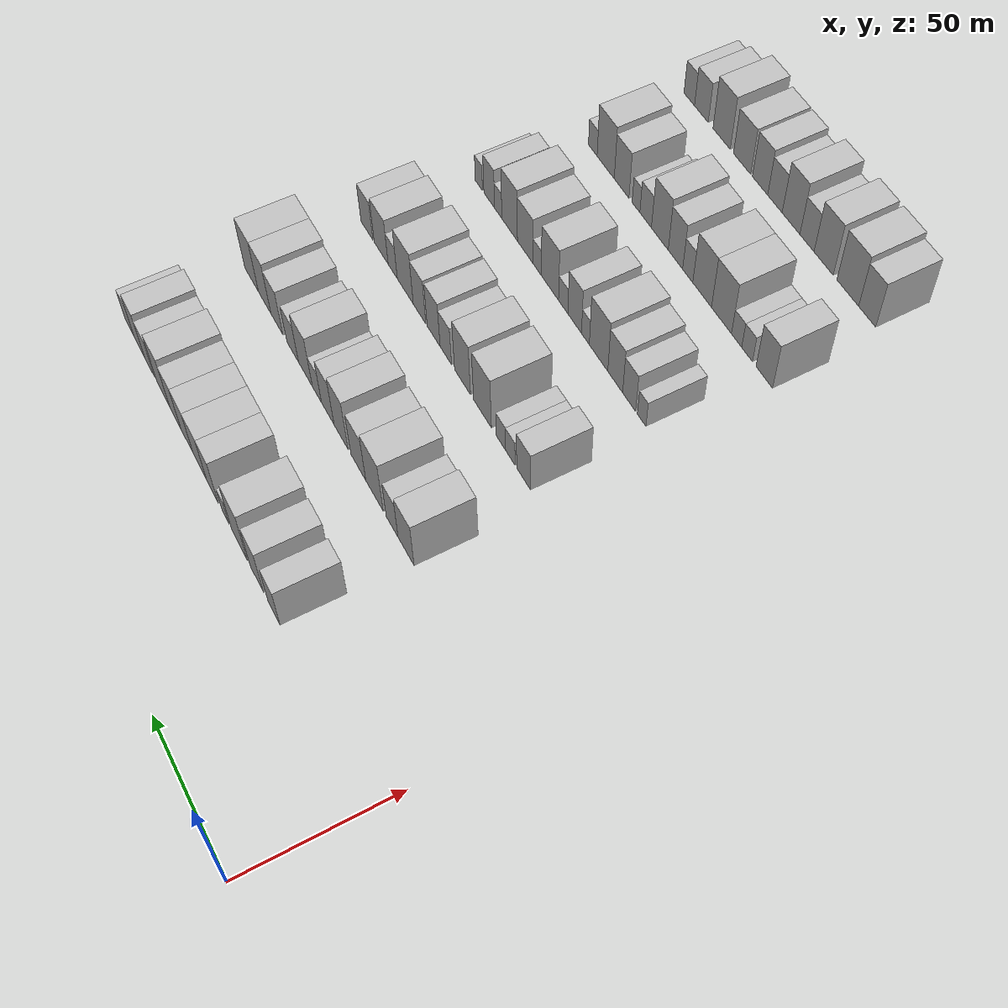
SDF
<sdf version="1.6">
 <world name="default">
  <model name="building_74">
   <static>1</static>
   <pose>50.0000 62.3128 0 0.000000 0.000000 0.000000</pose>
   <link name="link">
    <pose>0 0 9.00 0 0 0</pose>
    <collision name="collision"><geometry><box><size>20.0000 8.2062 18.0000</size></box></geometry></collision>
    <visual name="visual">
     <cast_shadows>0</cast_shadows>
     <geometry><box><size>20.0000 8.2062 18.0000</size></box></geometry>
     <material>
      <script>
       <uri>model://HANNAS_wall/materials/scripts</uri>
       <uri>model://HANNAS_wall/materials/textures</uri>
       <name>vrc/HANNAS_wall</name>
      </script>
     </material>
    </visual>
   </link>
  </model>
  <model name="building_75">
   <static>1</static>
   <pose>50.0000 74.0104 0 0.000000 0.000000 0.000000</pose>
   <link name="link">
    <pose>0 0 10.50 0 0 0</pose>
    <collision name="collision"><geometry><box><size>20.0000 9.1891 21.0000</size></box></geometry></collision>
    <visual name="visual">
     <cast_shadows>0</cast_shadows>
     <geometry><box><size>20.0000 9.1891 21.0000</size></box></geometry>
     <material>
      <script>
       <uri>model://HANNAS_wall/materials/scripts</uri>
       <uri>model://HANNAS_wall/materials/textures</uri>
       <name>vrc/HANNAS_wall</name>
      </script>
     </material>
    </visual>
   </link>
  </model>
  <model name="building_76">
   <static>1</static>
   <pose>50.0000 86.2270 0 0.000000 0.000000 0.000000</pose>
   <link name="link">
    <pose>0 0 12.00 0 0 0</pose>
    <collision name="collision"><geometry><box><size>20.0000 11.2441 24.0000</size></box></geometry></collision>
    <visual name="visual">
     <cast_shadows>0</cast_shadows>
     <geometry><box><size>20.0000 11.2441 24.0000</size></box></geometry>
     <material>
      <script>
       <uri>model://HANNAS_wall/materials/scripts</uri>
       <uri>model://HANNAS_wall/materials/textures</uri>
       <name>vrc/HANNAS_wall</name>
      </script>
     </material>
    </visual>
   </link>
  </model>
  <model name="building_77">
   <static>1</static>
   <pose>50.0000 96.2769 0 0.000000 0.000000 0.000000</pose>
   <link name="link">
    <pose>0 0 6.00 0 0 0</pose>
    <collision name="collision"><geometry><box><size>20.0000 4.8557 12.0000</size></box></geometry></collision>
    <visual name="visual">
     <cast_shadows>0</cast_shadows>
     <geometry><box><size>20.0000 4.8557 12.0000</size></box></geometry>
     <material>
      <script>
       <uri>model://HANNAS_wall/materials/scripts</uri>
       <uri>model://HANNAS_wall/materials/textures</uri>
       <name>vrc/HANNAS_wall</name>
      </script>
     </material>
    </visual>
   </link>
  </model>
  <model name="building_78">
   <static>1</static>
   <pose>50.0000 106.0245 0 0.000000 0.000000 0.000000</pose>
   <link name="link">
    <pose>0 0 10.50 0 0 0</pose>
    <collision name="collision"><geometry><box><size>20.0000 8.6394 21.0000</size></box></geometry></collision>
    <visual name="visual">
     <cast_shadows>0</cast_shadows>
     <geometry><box><size>20.0000 8.6394 21.0000</size></box></geometry>
     <material>
      <script>
       <uri>model://HANNAS_wall/materials/scripts</uri>
       <uri>model://HANNAS_wall/materials/textures</uri>
       <name>vrc/HANNAS_wall</name>
      </script>
     </material>
    </visual>
   </link>
  </model>
  <model name="building_79">
   <static>1</static>
   <pose>50.0000 115.4120 0 0.000000 0.000000 0.000000</pose>
   <link name="link">
    <pose>0 0 10.50 0 0 0</pose>
    <collision name="collision"><geometry><box><size>20.0000 10.1356 21.0000</size></box></geometry></collision>
    <visual name="visual">
     <cast_shadows>0</cast_shadows>
     <geometry><box><size>20.0000 10.1356 21.0000</size></box></geometry>
     <material>
      <script>
       <uri>model://HANNAS_wall/materials/scripts</uri>
       <uri>model://HANNAS_wall/materials/textures</uri>
       <name>vrc/HANNAS_wall</name>
      </script>
     </material>
    </visual>
   </link>
  </model>
  <model name="building_80">
   <static>1</static>
   <pose>50.0000 125.1478 0 0.000000 0.000000 0.000000</pose>
   <link name="link">
    <pose>0 0 10.50 0 0 0</pose>
    <collision name="collision"><geometry><box><size>20.0000 9.3362 21.0000</size></box></geometry></collision>
    <visual name="visual">
     <cast_shadows>0</cast_shadows>
     <geometry><box><size>20.0000 9.3362 21.0000</size></box></geometry>
     <material>
      <script>
       <uri>model://HANNAS_wall/materials/scripts</uri>
       <uri>model://HANNAS_wall/materials/textures</uri>
       <name>vrc/HANNAS_wall</name>
      </script>
     </material>
    </visual>
   </link>
  </model>
  <model name="building_81">
   <static>1</static>
   <pose>50.0000 134.2164 0 0.000000 0.000000 0.000000</pose>
   <link name="link">
    <pose>0 0 10.50 0 0 0</pose>
    <collision name="collision"><geometry><box><size>20.0000 8.8010 21.0000</size></box></geometry></collision>
    <visual name="visual">
     <cast_shadows>0</cast_shadows>
     <geometry><box><size>20.0000 8.8010 21.0000</size></box></geometry>
     <material>
      <script>
       <uri>model://HANNAS_wall/materials/scripts</uri>
       <uri>model://HANNAS_wall/materials/textures</uri>
       <name>vrc/HANNAS_wall</name>
      </script>
     </material>
    </visual>
   </link>
  </model>
  <model name="building_82">
   <static>1</static>
   <pose>50.0000 143.7720 0 0.000000 0.000000 0.000000</pose>
   <link name="link">
    <pose>0 0 12.00 0 0 0</pose>
    <collision name="collision"><geometry><box><size>20.0000 10.3101 24.0000</size></box></geometry></collision>
    <visual name="visual">
     <cast_shadows>0</cast_shadows>
     <geometry><box><size>20.0000 10.3101 24.0000</size></box></geometry>
     <material>
      <script>
       <uri>model://HANNAS_wall/materials/scripts</uri>
       <uri>model://HANNAS_wall/materials/textures</uri>
       <name>vrc/HANNAS_wall</name>
      </script>
     </material>
    </visual>
   </link>
  </model>
  <model name="building_83">
   <static>1</static>
   <pose>50.0000 155.1610 0 0.000000 0.000000 0.000000</pose>
   <link name="link">
    <pose>0 0 9.00 0 0 0</pose>
    <collision name="collision"><geometry><box><size>20.0000 8.4679 18.0000</size></box></geometry></collision>
    <visual name="visual">
     <cast_shadows>0</cast_shadows>
     <geometry><box><size>20.0000 8.4679 18.0000</size></box></geometry>
     <material>
      <script>
       <uri>model://HANNAS_wall/materials/scripts</uri>
       <uri>model://HANNAS_wall/materials/textures</uri>
       <name>vrc/HANNAS_wall</name>
      </script>
     </material>
    </visual>
   </link>
  </model>
  <model name="building_84">
   <static>1</static>
   <pose>50.0000 163.7331 0 0.000000 0.000000 0.000000</pose>
   <link name="link">
    <pose>0 0 10.50 0 0 0</pose>
    <collision name="collision"><geometry><box><size>20.0000 8.6764 21.0000</size></box></geometry></collision>
    <visual name="visual">
     <cast_shadows>0</cast_shadows>
     <geometry><box><size>20.0000 8.6764 21.0000</size></box></geometry>
     <material>
      <script>
       <uri>model://HANNAS_wall/materials/scripts</uri>
       <uri>model://HANNAS_wall/materials/textures</uri>
       <name>vrc/HANNAS_wall</name>
      </script>
     </material>
    </visual>
   </link>
  </model>
  <model name="building_85">
   <static>1</static>
   <pose>50.0000 171.7244 0 0.000000 0.000000 0.000000</pose>
   <link name="link">
    <pose>0 0 7.50 0 0 0</pose>
    <collision name="collision"><geometry><box><size>20.0000 7.3060 15.0000</size></box></geometry></collision>
    <visual name="visual">
     <cast_shadows>0</cast_shadows>
     <geometry><box><size>20.0000 7.3060 15.0000</size></box></geometry>
     <material>
      <script>
       <uri>model://HANNAS_wall/materials/scripts</uri>
       <uri>model://HANNAS_wall/materials/textures</uri>
       <name>vrc/HANNAS_wall</name>
      </script>
     </material>
    </visual>
   </link>
  </model>
  <model name="building_211">
   <static>1</static>
   <pose>90.0000 62.2830 0 0.000000 0.000000 0.000000</pose>
   <link name="link">
    <pose>0 0 10.50 0 0 0</pose>
    <collision name="collision"><geometry><box><size>20.0000 10.1253 21.0000</size></box></geometry></collision>
    <visual name="visual">
     <cast_shadows>0</cast_shadows>
     <geometry><box><size>20.0000 10.1253 21.0000</size></box></geometry>
     <material>
      <script>
       <uri>model://HANNAS_wall/materials/scripts</uri>
       <uri>model://HANNAS_wall/materials/textures</uri>
       <name>vrc/HANNAS_wall</name>
      </script>
     </material>
    </visual>
   </link>
  </model>
  <model name="building_212">
   <static>1</static>
   <pose>90.0000 71.1523 0 0.000000 0.000000 0.000000</pose>
   <link name="link">
    <pose>0 0 9.00 0 0 0</pose>
    <collision name="collision"><geometry><box><size>20.0000 7.6133 18.0000</size></box></geometry></collision>
    <visual name="visual">
     <cast_shadows>0</cast_shadows>
     <geometry><box><size>20.0000 7.6133 18.0000</size></box></geometry>
     <material>
      <script>
       <uri>model://HANNAS_wall/materials/scripts</uri>
       <uri>model://HANNAS_wall/materials/textures</uri>
       <name>vrc/HANNAS_wall</name>
      </script>
     </material>
    </visual>
   </link>
  </model>
  <model name="building_213">
   <static>1</static>
   <pose>90.0000 82.6903 0 0.000000 0.000000 0.000000</pose>
   <link name="link">
    <pose>0 0 12.00 0 0 0</pose>
    <collision name="collision"><geometry><box><size>20.0000 11.4626 24.0000</size></box></geometry></collision>
    <visual name="visual">
     <cast_shadows>0</cast_shadows>
     <geometry><box><size>20.0000 11.4626 24.0000</size></box></geometry>
     <material>
      <script>
       <uri>model://HANNAS_wall/materials/scripts</uri>
       <uri>model://HANNAS_wall/materials/textures</uri>
       <name>vrc/HANNAS_wall</name>
      </script>
     </material>
    </visual>
   </link>
  </model>
  <model name="building_214">
   <static>1</static>
   <pose>90.0000 93.4371 0 0.000000 0.000000 0.000000</pose>
   <link name="link">
    <pose>0 0 10.50 0 0 0</pose>
    <collision name="collision"><geometry><box><size>20.0000 10.0312 21.0000</size></box></geometry></collision>
    <visual name="visual">
     <cast_shadows>0</cast_shadows>
     <geometry><box><size>20.0000 10.0312 21.0000</size></box></geometry>
     <material>
      <script>
       <uri>model://HANNAS_wall/materials/scripts</uri>
       <uri>model://HANNAS_wall/materials/textures</uri>
       <name>vrc/HANNAS_wall</name>
      </script>
     </material>
    </visual>
   </link>
  </model>
  <model name="building_215">
   <static>1</static>
   <pose>90.0000 105.2821 0 0.000000 0.000000 0.000000</pose>
   <link name="link">
    <pose>0 0 12.00 0 0 0</pose>
    <collision name="collision"><geometry><box><size>20.0000 9.6587 24.0000</size></box></geometry></collision>
    <visual name="visual">
     <cast_shadows>0</cast_shadows>
     <geometry><box><size>20.0000 9.6587 24.0000</size></box></geometry>
     <material>
      <script>
       <uri>model://HANNAS_wall/materials/scripts</uri>
       <uri>model://HANNAS_wall/materials/textures</uri>
       <name>vrc/HANNAS_wall</name>
      </script>
     </material>
    </visual>
   </link>
  </model>
  <model name="building_216">
   <static>1</static>
   <pose>90.0000 114.5402 0 0.000000 0.000000 0.000000</pose>
   <link name="link">
    <pose>0 0 10.50 0 0 0</pose>
    <collision name="collision"><geometry><box><size>20.0000 8.8576 21.0000</size></box></geometry></collision>
    <visual name="visual">
     <cast_shadows>0</cast_shadows>
     <geometry><box><size>20.0000 8.8576 21.0000</size></box></geometry>
     <material>
      <script>
       <uri>model://HANNAS_wall/materials/scripts</uri>
       <uri>model://HANNAS_wall/materials/textures</uri>
       <name>vrc/HANNAS_wall</name>
      </script>
     </material>
    </visual>
   </link>
  </model>
  <model name="building_217">
   <static>1</static>
   <pose>90.0000 122.2292 0 0.000000 0.000000 0.000000</pose>
   <link name="link">
    <pose>0 0 7.50 0 0 0</pose>
    <collision name="collision"><geometry><box><size>20.0000 6.5204 15.0000</size></box></geometry></collision>
    <visual name="visual">
     <cast_shadows>0</cast_shadows>
     <geometry><box><size>20.0000 6.5204 15.0000</size></box></geometry>
     <material>
      <script>
       <uri>model://HANNAS_wall/materials/scripts</uri>
       <uri>model://HANNAS_wall/materials/textures</uri>
       <name>vrc/HANNAS_wall</name>
      </script>
     </material>
    </visual>
   </link>
  </model>
  <model name="building_218">
   <static>1</static>
   <pose>90.0000 130.5670 0 0.000000 0.000000 0.000000</pose>
   <link name="link">
    <pose>0 0 12.00 0 0 0</pose>
    <collision name="collision"><geometry><box><size>20.0000 10.1552 24.0000</size></box></geometry></collision>
    <visual name="visual">
     <cast_shadows>0</cast_shadows>
     <geometry><box><size>20.0000 10.1552 24.0000</size></box></geometry>
     <material>
      <script>
       <uri>model://HANNAS_wall/materials/scripts</uri>
       <uri>model://HANNAS_wall/materials/textures</uri>
       <name>vrc/HANNAS_wall</name>
      </script>
     </material>
    </visual>
   </link>
  </model>
  <model name="building_219">
   <static>1</static>
   <pose>90.0000 139.9201 0 0.000000 0.000000 0.000000</pose>
   <link name="link">
    <pose>0 0 9.00 0 0 0</pose>
    <collision name="collision"><geometry><box><size>20.0000 8.5511 18.0000</size></box></geometry></collision>
    <visual name="visual">
     <cast_shadows>0</cast_shadows>
     <geometry><box><size>20.0000 8.5511 18.0000</size></box></geometry>
     <material>
      <script>
       <uri>model://HANNAS_wall/materials/scripts</uri>
       <uri>model://HANNAS_wall/materials/textures</uri>
       <name>vrc/HANNAS_wall</name>
      </script>
     </material>
    </visual>
   </link>
  </model>
  <model name="building_220">
   <static>1</static>
   <pose>90.0000 151.7253 0 0.000000 0.000000 0.000000</pose>
   <link name="link">
    <pose>0 0 10.50 0 0 0</pose>
    <collision name="collision"><geometry><box><size>20.0000 9.0593 21.0000</size></box></geometry></collision>
    <visual name="visual">
     <cast_shadows>0</cast_shadows>
     <geometry><box><size>20.0000 9.0593 21.0000</size></box></geometry>
     <material>
      <script>
       <uri>model://HANNAS_wall/materials/scripts</uri>
       <uri>model://HANNAS_wall/materials/textures</uri>
       <name>vrc/HANNAS_wall</name>
      </script>
     </material>
    </visual>
   </link>
  </model>
  <model name="building_221">
   <static>1</static>
   <pose>90.0000 161.0773 0 0.000000 0.000000 0.000000</pose>
   <link name="link">
    <pose>0 0 12.00 0 0 0</pose>
    <collision name="collision"><geometry><box><size>20.0000 9.6445 24.0000</size></box></geometry></collision>
    <visual name="visual">
     <cast_shadows>0</cast_shadows>
     <geometry><box><size>20.0000 9.6445 24.0000</size></box></geometry>
     <material>
      <script>
       <uri>model://HANNAS_wall/materials/scripts</uri>
       <uri>model://HANNAS_wall/materials/textures</uri>
       <name>vrc/HANNAS_wall</name>
      </script>
     </material>
    </visual>
   </link>
  </model>
  <model name="building_222">
   <static>1</static>
   <pose>90.0000 171.2725 0 0.000000 0.000000 0.000000</pose>
   <link name="link">
    <pose>0 0 12.00 0 0 0</pose>
    <collision name="collision"><geometry><box><size>20.0000 10.7460 24.0000</size></box></geometry></collision>
    <visual name="visual">
     <cast_shadows>0</cast_shadows>
     <geometry><box><size>20.0000 10.7460 24.0000</size></box></geometry>
     <material>
      <script>
       <uri>model://HANNAS_wall/materials/scripts</uri>
       <uri>model://HANNAS_wall/materials/textures</uri>
       <name>vrc/HANNAS_wall</name>
      </script>
     </material>
    </visual>
   </link>
  </model>
  <model name="building_349">
   <static>1</static>
   <pose>130.0000 67.4562 0 0.000000 0.000000 0.000000</pose>
   <link name="link">
    <pose>0 0 9.00 0 0 0</pose>
    <collision name="collision"><geometry><box><size>20.0000 8.3355 18.0000</size></box></geometry></collision>
    <visual name="visual">
     <cast_shadows>0</cast_shadows>
     <geometry><box><size>20.0000 8.3355 18.0000</size></box></geometry>
     <material>
      <script>
       <uri>model://HANNAS_wall/materials/scripts</uri>
       <uri>model://HANNAS_wall/materials/textures</uri>
       <name>vrc/HANNAS_wall</name>
      </script>
     </material>
    </visual>
   </link>
  </model>
  <model name="building_350">
   <static>1</static>
   <pose>130.0000 75.5145 0 0.000000 0.000000 0.000000</pose>
   <link name="link">
    <pose>0 0 6.00 0 0 0</pose>
    <collision name="collision"><geometry><box><size>20.0000 5.7811 12.0000</size></box></geometry></collision>
    <visual name="visual">
     <cast_shadows>0</cast_shadows>
     <geometry><box><size>20.0000 5.7811 12.0000</size></box></geometry>
     <material>
      <script>
       <uri>model://HANNAS_wall/materials/scripts</uri>
       <uri>model://HANNAS_wall/materials/textures</uri>
       <name>vrc/HANNAS_wall</name>
      </script>
     </material>
    </visual>
   </link>
  </model>
  <model name="building_351">
   <static>1</static>
   <pose>130.0000 81.3223 0 0.000000 0.000000 0.000000</pose>
   <link name="link">
    <pose>0 0 6.00 0 0 0</pose>
    <collision name="collision"><geometry><box><size>20.0000 5.8343 12.0000</size></box></geometry></collision>
    <visual name="visual">
     <cast_shadows>0</cast_shadows>
     <geometry><box><size>20.0000 5.8343 12.0000</size></box></geometry>
     <material>
      <script>
       <uri>model://HANNAS_wall/materials/scripts</uri>
       <uri>model://HANNAS_wall/materials/textures</uri>
       <name>vrc/HANNAS_wall</name>
      </script>
     </material>
    </visual>
   </link>
  </model>
  <model name="building_352">
   <static>1</static>
   <pose>130.0000 92.8969 0 0.000000 0.000000 0.000000</pose>
   <link name="link">
    <pose>0 0 12.00 0 0 0</pose>
    <collision name="collision"><geometry><box><size>20.0000 11.3150 24.0000</size></box></geometry></collision>
    <visual name="visual">
     <cast_shadows>0</cast_shadows>
     <geometry><box><size>20.0000 11.3150 24.0000</size></box></geometry>
     <material>
      <script>
       <uri>model://HANNAS_wall/materials/scripts</uri>
       <uri>model://HANNAS_wall/materials/textures</uri>
       <name>vrc/HANNAS_wall</name>
      </script>
     </material>
    </visual>
   </link>
  </model>
  <model name="building_353">
   <static>1</static>
   <pose>130.0000 105.7517 0 0.000000 0.000000 0.000000</pose>
   <link name="link">
    <pose>0 0 12.00 0 0 0</pose>
    <collision name="collision"><geometry><box><size>20.0000 10.3945 24.0000</size></box></geometry></collision>
    <visual name="visual">
     <cast_shadows>0</cast_shadows>
     <geometry><box><size>20.0000 10.3945 24.0000</size></box></geometry>
     <material>
      <script>
       <uri>model://HANNAS_wall/materials/scripts</uri>
       <uri>model://HANNAS_wall/materials/textures</uri>
       <name>vrc/HANNAS_wall</name>
      </script>
     </material>
    </visual>
   </link>
  </model>
  <model name="building_354">
   <static>1</static>
   <pose>130.0000 116.7409 0 0.000000 0.000000 0.000000</pose>
   <link name="link">
    <pose>0 0 9.00 0 0 0</pose>
    <collision name="collision"><geometry><box><size>20.0000 7.5838 18.0000</size></box></geometry></collision>
    <visual name="visual">
     <cast_shadows>0</cast_shadows>
     <geometry><box><size>20.0000 7.5838 18.0000</size></box></geometry>
     <material>
      <script>
       <uri>model://HANNAS_wall/materials/scripts</uri>
       <uri>model://HANNAS_wall/materials/textures</uri>
       <name>vrc/HANNAS_wall</name>
      </script>
     </material>
    </visual>
   </link>
  </model>
  <model name="building_355">
   <static>1</static>
   <pose>130.0000 124.9064 0 0.000000 0.000000 0.000000</pose>
   <link name="link">
    <pose>0 0 10.50 0 0 0</pose>
    <collision name="collision"><geometry><box><size>20.0000 8.7472 21.0000</size></box></geometry></collision>
    <visual name="visual">
     <cast_shadows>0</cast_shadows>
     <geometry><box><size>20.0000 8.7472 21.0000</size></box></geometry>
     <material>
      <script>
       <uri>model://HANNAS_wall/materials/scripts</uri>
       <uri>model://HANNAS_wall/materials/textures</uri>
       <name>vrc/HANNAS_wall</name>
      </script>
     </material>
    </visual>
   </link>
  </model>
  <model name="building_356">
   <static>1</static>
   <pose>130.0000 134.5860 0 0.000000 0.000000 0.000000</pose>
   <link name="link">
    <pose>0 0 10.50 0 0 0</pose>
    <collision name="collision"><geometry><box><size>20.0000 8.6120 21.0000</size></box></geometry></collision>
    <visual name="visual">
     <cast_shadows>0</cast_shadows>
     <geometry><box><size>20.0000 8.6120 21.0000</size></box></geometry>
     <material>
      <script>
       <uri>model://HANNAS_wall/materials/scripts</uri>
       <uri>model://HANNAS_wall/materials/textures</uri>
       <name>vrc/HANNAS_wall</name>
      </script>
     </material>
    </visual>
   </link>
  </model>
  <model name="building_357">
   <static>1</static>
   <pose>130.0000 144.4945 0 0.000000 0.000000 0.000000</pose>
   <link name="link">
    <pose>0 0 12.00 0 0 0</pose>
    <collision name="collision"><geometry><box><size>20.0000 11.2050 24.0000</size></box></geometry></collision>
    <visual name="visual">
     <cast_shadows>0</cast_shadows>
     <geometry><box><size>20.0000 11.2050 24.0000</size></box></geometry>
     <material>
      <script>
       <uri>model://HANNAS_wall/materials/scripts</uri>
       <uri>model://HANNAS_wall/materials/textures</uri>
       <name>vrc/HANNAS_wall</name>
      </script>
     </material>
    </visual>
   </link>
  </model>
  <model name="building_358">
   <static>1</static>
   <pose>130.0000 153.3504 0 0.000000 0.000000 0.000000</pose>
   <link name="link">
    <pose>0 0 7.50 0 0 0</pose>
    <collision name="collision"><geometry><box><size>20.0000 6.5069 15.0000</size></box></geometry></collision>
    <visual name="visual">
     <cast_shadows>0</cast_shadows>
     <geometry><box><size>20.0000 6.5069 15.0000</size></box></geometry>
     <material>
      <script>
       <uri>model://HANNAS_wall/materials/scripts</uri>
       <uri>model://HANNAS_wall/materials/textures</uri>
       <name>vrc/HANNAS_wall</name>
      </script>
     </material>
    </visual>
   </link>
  </model>
  <model name="building_359">
   <static>1</static>
   <pose>130.0000 161.6800 0 0.000000 0.000000 0.000000</pose>
   <link name="link">
    <pose>0 0 10.50 0 0 0</pose>
    <collision name="collision"><geometry><box><size>20.0000 10.1522 21.0000</size></box></geometry></collision>
    <visual name="visual">
     <cast_shadows>0</cast_shadows>
     <geometry><box><size>20.0000 10.1522 21.0000</size></box></geometry>
     <material>
      <script>
       <uri>model://HANNAS_wall/materials/scripts</uri>
       <uri>model://HANNAS_wall/materials/textures</uri>
       <name>vrc/HANNAS_wall</name>
      </script>
     </material>
    </visual>
   </link>
  </model>
  <model name="building_360">
   <static>1</static>
   <pose>130.0000 172.1384 0 0.000000 0.000000 0.000000</pose>
   <link name="link">
    <pose>0 0 9.00 0 0 0</pose>
    <collision name="collision"><geometry><box><size>20.0000 8.7647 18.0000</size></box></geometry></collision>
    <visual name="visual">
     <cast_shadows>0</cast_shadows>
     <geometry><box><size>20.0000 8.7647 18.0000</size></box></geometry>
     <material>
      <script>
       <uri>model://HANNAS_wall/materials/scripts</uri>
       <uri>model://HANNAS_wall/materials/textures</uri>
       <name>vrc/HANNAS_wall</name>
      </script>
     </material>
    </visual>
   </link>
  </model>
  <model name="building_477">
   <static>1</static>
   <pose>170.0000 68.6658 0 0.000000 0.000000 0.000000</pose>
   <link name="link">
    <pose>0 0 6.00 0 0 0</pose>
    <collision name="collision"><geometry><box><size>20.0000 4.9413 12.0000</size></box></geometry></collision>
    <visual name="visual">
     <cast_shadows>0</cast_shadows>
     <geometry><box><size>20.0000 4.9413 12.0000</size></box></geometry>
     <material>
      <script>
       <uri>model://HANNAS_wall/materials/scripts</uri>
       <uri>model://HANNAS_wall/materials/textures</uri>
       <name>vrc/HANNAS_wall</name>
      </script>
     </material>
    </visual>
   </link>
  </model>
  <model name="building_478">
   <static>1</static>
   <pose>170.0000 75.9228 0 0.000000 0.000000 0.000000</pose>
   <link name="link">
    <pose>0 0 9.00 0 0 0</pose>
    <collision name="collision"><geometry><box><size>20.0000 7.5728 18.0000</size></box></geometry></collision>
    <visual name="visual">
     <cast_shadows>0</cast_shadows>
     <geometry><box><size>20.0000 7.5728 18.0000</size></box></geometry>
     <material>
      <script>
       <uri>model://HANNAS_wall/materials/scripts</uri>
       <uri>model://HANNAS_wall/materials/textures</uri>
       <name>vrc/HANNAS_wall</name>
      </script>
     </material>
    </visual>
   </link>
  </model>
  <model name="building_479">
   <static>1</static>
   <pose>170.0000 84.1188 0 0.000000 0.000000 0.000000</pose>
   <link name="link">
    <pose>0 0 10.50 0 0 0</pose>
    <collision name="collision"><geometry><box><size>20.0000 8.8192 21.0000</size></box></geometry></collision>
    <visual name="visual">
     <cast_shadows>0</cast_shadows>
     <geometry><box><size>20.0000 8.8192 21.0000</size></box></geometry>
     <material>
      <script>
       <uri>model://HANNAS_wall/materials/scripts</uri>
       <uri>model://HANNAS_wall/materials/textures</uri>
       <name>vrc/HANNAS_wall</name>
      </script>
     </material>
    </visual>
   </link>
  </model>
  <model name="building_480">
   <static>1</static>
   <pose>170.0000 94.1138 0 0.000000 0.000000 0.000000</pose>
   <link name="link">
    <pose>0 0 12.00 0 0 0</pose>
    <collision name="collision"><geometry><box><size>20.0000 11.1707 24.0000</size></box></geometry></collision>
    <visual name="visual">
     <cast_shadows>0</cast_shadows>
     <geometry><box><size>20.0000 11.1707 24.0000</size></box></geometry>
     <material>
      <script>
       <uri>model://HANNAS_wall/materials/scripts</uri>
       <uri>model://HANNAS_wall/materials/textures</uri>
       <name>vrc/HANNAS_wall</name>
      </script>
     </material>
    </visual>
   </link>
  </model>
  <model name="building_481">
   <static>1</static>
   <pose>170.0000 102.1214 0 0.000000 0.000000 0.000000</pose>
   <link name="link">
    <pose>0 0 6.00 0 0 0</pose>
    <collision name="collision"><geometry><box><size>20.0000 4.8445 12.0000</size></box></geometry></collision>
    <visual name="visual">
     <cast_shadows>0</cast_shadows>
     <geometry><box><size>20.0000 4.8445 12.0000</size></box></geometry>
     <material>
      <script>
       <uri>model://HANNAS_wall/materials/scripts</uri>
       <uri>model://HANNAS_wall/materials/textures</uri>
       <name>vrc/HANNAS_wall</name>
      </script>
     </material>
    </visual>
   </link>
  </model>
  <model name="building_482">
   <static>1</static>
   <pose>170.0000 108.7782 0 0.000000 0.000000 0.000000</pose>
   <link name="link">
    <pose>0 0 10.50 0 0 0</pose>
    <collision name="collision"><geometry><box><size>20.0000 8.4691 21.0000</size></box></geometry></collision>
    <visual name="visual">
     <cast_shadows>0</cast_shadows>
     <geometry><box><size>20.0000 8.4691 21.0000</size></box></geometry>
     <material>
      <script>
       <uri>model://HANNAS_wall/materials/scripts</uri>
       <uri>model://HANNAS_wall/materials/textures</uri>
       <name>vrc/HANNAS_wall</name>
      </script>
     </material>
    </visual>
   </link>
  </model>
  <model name="building_483">
   <static>1</static>
   <pose>170.0000 115.9503 0 0.000000 0.000000 0.000000</pose>
   <link name="link">
    <pose>0 0 6.00 0 0 0</pose>
    <collision name="collision"><geometry><box><size>20.0000 5.8751 12.0000</size></box></geometry></collision>
    <visual name="visual">
     <cast_shadows>0</cast_shadows>
     <geometry><box><size>20.0000 5.8751 12.0000</size></box></geometry>
     <material>
      <script>
       <uri>model://HANNAS_wall/materials/scripts</uri>
       <uri>model://HANNAS_wall/materials/textures</uri>
       <name>vrc/HANNAS_wall</name>
      </script>
     </material>
    </visual>
   </link>
  </model>
  <model name="building_484">
   <static>1</static>
   <pose>170.0000 124.3877 0 0.000000 0.000000 0.000000</pose>
   <link name="link">
    <pose>0 0 12.00 0 0 0</pose>
    <collision name="collision"><geometry><box><size>20.0000 10.9997 24.0000</size></box></geometry></collision>
    <visual name="visual">
     <cast_shadows>0</cast_shadows>
     <geometry><box><size>20.0000 10.9997 24.0000</size></box></geometry>
     <material>
      <script>
       <uri>model://HANNAS_wall/materials/scripts</uri>
       <uri>model://HANNAS_wall/materials/textures</uri>
       <name>vrc/HANNAS_wall</name>
      </script>
     </material>
    </visual>
   </link>
  </model>
  <model name="building_485">
   <static>1</static>
   <pose>170.0000 132.6262 0 0.000000 0.000000 0.000000</pose>
   <link name="link">
    <pose>0 0 6.00 0 0 0</pose>
    <collision name="collision"><geometry><box><size>20.0000 5.4774 12.0000</size></box></geometry></collision>
    <visual name="visual">
     <cast_shadows>0</cast_shadows>
     <geometry><box><size>20.0000 5.4774 12.0000</size></box></geometry>
     <material>
      <script>
       <uri>model://HANNAS_wall/materials/scripts</uri>
       <uri>model://HANNAS_wall/materials/textures</uri>
       <name>vrc/HANNAS_wall</name>
      </script>
     </material>
    </visual>
   </link>
  </model>
  <model name="building_486">
   <static>1</static>
   <pose>170.0000 140.5046 0 0.000000 0.000000 0.000000</pose>
   <link name="link">
    <pose>0 0 10.50 0 0 0</pose>
    <collision name="collision"><geometry><box><size>20.0000 10.2792 21.0000</size></box></geometry></collision>
    <visual name="visual">
     <cast_shadows>0</cast_shadows>
     <geometry><box><size>20.0000 10.2792 21.0000</size></box></geometry>
     <material>
      <script>
       <uri>model://HANNAS_wall/materials/scripts</uri>
       <uri>model://HANNAS_wall/materials/textures</uri>
       <name>vrc/HANNAS_wall</name>
      </script>
     </material>
    </visual>
   </link>
  </model>
  <model name="building_487">
   <static>1</static>
   <pose>170.0000 150.9053 0 0.000000 0.000000 0.000000</pose>
   <link name="link">
    <pose>0 0 12.00 0 0 0</pose>
    <collision name="collision"><geometry><box><size>20.0000 10.5223 24.0000</size></box></geometry></collision>
    <visual name="visual">
     <cast_shadows>0</cast_shadows>
     <geometry><box><size>20.0000 10.5223 24.0000</size></box></geometry>
     <material>
      <script>
       <uri>model://HANNAS_wall/materials/scripts</uri>
       <uri>model://HANNAS_wall/materials/textures</uri>
       <name>vrc/HANNAS_wall</name>
      </script>
     </material>
    </visual>
   </link>
  </model>
  <model name="building_488">
   <static>1</static>
   <pose>170.0000 158.6486 0 0.000000 0.000000 0.000000</pose>
   <link name="link">
    <pose>0 0 6.00 0 0 0</pose>
    <collision name="collision"><geometry><box><size>20.0000 4.9643 12.0000</size></box></geometry></collision>
    <visual name="visual">
     <cast_shadows>0</cast_shadows>
     <geometry><box><size>20.0000 4.9643 12.0000</size></box></geometry>
     <material>
      <script>
       <uri>model://HANNAS_wall/materials/scripts</uri>
       <uri>model://HANNAS_wall/materials/textures</uri>
       <name>vrc/HANNAS_wall</name>
      </script>
     </material>
    </visual>
   </link>
  </model>
  <model name="building_489">
   <static>1</static>
   <pose>170.0000 164.8229 0 0.000000 0.000000 0.000000</pose>
   <link name="link">
    <pose>0 0 9.00 0 0 0</pose>
    <collision name="collision"><geometry><box><size>20.0000 7.3842 18.0000</size></box></geometry></collision>
    <visual name="visual">
     <cast_shadows>0</cast_shadows>
     <geometry><box><size>20.0000 7.3842 18.0000</size></box></geometry>
     <material>
      <script>
       <uri>model://HANNAS_wall/materials/scripts</uri>
       <uri>model://HANNAS_wall/materials/textures</uri>
       <name>vrc/HANNAS_wall</name>
      </script>
     </material>
    </visual>
   </link>
  </model>
  <model name="building_490">
   <static>1</static>
   <pose>170.0000 172.0184 0 0.000000 0.000000 0.000000</pose>
   <link name="link">
    <pose>0 0 6.00 0 0 0</pose>
    <collision name="collision"><geometry><box><size>20.0000 5.0068 12.0000</size></box></geometry></collision>
    <visual name="visual">
     <cast_shadows>0</cast_shadows>
     <geometry><box><size>20.0000 5.0068 12.0000</size></box></geometry>
     <material>
      <script>
       <uri>model://HANNAS_wall/materials/scripts</uri>
       <uri>model://HANNAS_wall/materials/textures</uri>
       <name>vrc/HANNAS_wall</name>
      </script>
     </material>
    </visual>
   </link>
  </model>
  <model name="building_623">
   <static>1</static>
   <pose>210.0000 64.3949 0 0.000000 0.000000 0.000000</pose>
   <link name="link">
    <pose>0 0 10.50 0 0 0</pose>
    <collision name="collision"><geometry><box><size>20.0000 9.0139 21.0000</size></box></geometry></collision>
    <visual name="visual">
     <cast_shadows>0</cast_shadows>
     <geometry><box><size>20.0000 9.0139 21.0000</size></box></geometry>
     <material>
      <script>
       <uri>model://HANNAS_wall/materials/scripts</uri>
       <uri>model://HANNAS_wall/materials/textures</uri>
       <name>vrc/HANNAS_wall</name>
      </script>
     </material>
    </visual>
   </link>
  </model>
  <model name="building_624">
   <static>1</static>
   <pose>210.0000 73.8983 0 0.000000 0.000000 0.000000</pose>
   <link name="link">
    <pose>0 0 6.00 0 0 0</pose>
    <collision name="collision"><geometry><box><size>20.0000 5.9929 12.0000</size></box></geometry></collision>
    <visual name="visual">
     <cast_shadows>0</cast_shadows>
     <geometry><box><size>20.0000 5.9929 12.0000</size></box></geometry>
     <material>
      <script>
       <uri>model://HANNAS_wall/materials/scripts</uri>
       <uri>model://HANNAS_wall/materials/textures</uri>
       <name>vrc/HANNAS_wall</name>
      </script>
     </material>
    </visual>
   </link>
  </model>
  <model name="building_625">
   <static>1</static>
   <pose>210.0000 79.7863 0 0.000000 0.000000 0.000000</pose>
   <link name="link">
    <pose>0 0 6.00 0 0 0</pose>
    <collision name="collision"><geometry><box><size>20.0000 5.7830 12.0000</size></box></geometry></collision>
    <visual name="visual">
     <cast_shadows>0</cast_shadows>
     <geometry><box><size>20.0000 5.7830 12.0000</size></box></geometry>
     <material>
      <script>
       <uri>model://HANNAS_wall/materials/scripts</uri>
       <uri>model://HANNAS_wall/materials/textures</uri>
       <name>vrc/HANNAS_wall</name>
      </script>
     </material>
    </visual>
   </link>
  </model>
  <model name="building_626">
   <static>1</static>
   <pose>210.0000 88.3985 0 0.000000 0.000000 0.000000</pose>
   <link name="link">
    <pose>0 0 12.00 0 0 0</pose>
    <collision name="collision"><geometry><box><size>20.0000 11.4414 24.0000</size></box></geometry></collision>
    <visual name="visual">
     <cast_shadows>0</cast_shadows>
     <geometry><box><size>20.0000 11.4414 24.0000</size></box></geometry>
     <material>
      <script>
       <uri>model://HANNAS_wall/materials/scripts</uri>
       <uri>model://HANNAS_wall/materials/textures</uri>
       <name>vrc/HANNAS_wall</name>
      </script>
     </material>
    </visual>
   </link>
  </model>
  <model name="building_627">
   <static>1</static>
   <pose>210.0000 99.5877 0 0.000000 0.000000 0.000000</pose>
   <link name="link">
    <pose>0 0 12.00 0 0 0</pose>
    <collision name="collision"><geometry><box><size>20.0000 10.9370 24.0000</size></box></geometry></collision>
    <visual name="visual">
     <cast_shadows>0</cast_shadows>
     <geometry><box><size>20.0000 10.9370 24.0000</size></box></geometry>
     <material>
      <script>
       <uri>model://HANNAS_wall/materials/scripts</uri>
       <uri>model://HANNAS_wall/materials/textures</uri>
       <name>vrc/HANNAS_wall</name>
      </script>
     </material>
    </visual>
   </link>
  </model>
  <model name="building_628">
   <static>1</static>
   <pose>210.0000 108.0832 0 0.000000 0.000000 0.000000</pose>
   <link name="link">
    <pose>0 0 7.50 0 0 0</pose>
    <collision name="collision"><geometry><box><size>20.0000 6.0541 15.0000</size></box></geometry></collision>
    <visual name="visual">
     <cast_shadows>0</cast_shadows>
     <geometry><box><size>20.0000 6.0541 15.0000</size></box></geometry>
     <material>
      <script>
       <uri>model://HANNAS_wall/materials/scripts</uri>
       <uri>model://HANNAS_wall/materials/textures</uri>
       <name>vrc/HANNAS_wall</name>
      </script>
     </material>
    </visual>
   </link>
  </model>
  <model name="building_629">
   <static>1</static>
   <pose>210.0000 115.4499 0 0.000000 0.000000 0.000000</pose>
   <link name="link">
    <pose>0 0 10.50 0 0 0</pose>
    <collision name="collision"><geometry><box><size>20.0000 8.6793 21.0000</size></box></geometry></collision>
    <visual name="visual">
     <cast_shadows>0</cast_shadows>
     <geometry><box><size>20.0000 8.6793 21.0000</size></box></geometry>
     <material>
      <script>
       <uri>model://HANNAS_wall/materials/scripts</uri>
       <uri>model://HANNAS_wall/materials/textures</uri>
       <name>vrc/HANNAS_wall</name>
      </script>
     </material>
    </visual>
   </link>
  </model>
  <model name="building_630">
   <static>1</static>
   <pose>210.0000 124.9480 0 0.000000 0.000000 0.000000</pose>
   <link name="link">
    <pose>0 0 12.00 0 0 0</pose>
    <collision name="collision"><geometry><box><size>20.0000 10.3169 24.0000</size></box></geometry></collision>
    <visual name="visual">
     <cast_shadows>0</cast_shadows>
     <geometry><box><size>20.0000 10.3169 24.0000</size></box></geometry>
     <material>
      <script>
       <uri>model://HANNAS_wall/materials/scripts</uri>
       <uri>model://HANNAS_wall/materials/textures</uri>
       <name>vrc/HANNAS_wall</name>
      </script>
     </material>
    </visual>
   </link>
  </model>
  <model name="building_631">
   <static>1</static>
   <pose>210.0000 133.7113 0 0.000000 0.000000 0.000000</pose>
   <link name="link">
    <pose>0 0 7.50 0 0 0</pose>
    <collision name="collision"><geometry><box><size>20.0000 7.2098 15.0000</size></box></geometry></collision>
    <visual name="visual">
     <cast_shadows>0</cast_shadows>
     <geometry><box><size>20.0000 7.2098 15.0000</size></box></geometry>
     <material>
      <script>
       <uri>model://HANNAS_wall/materials/scripts</uri>
       <uri>model://HANNAS_wall/materials/textures</uri>
       <name>vrc/HANNAS_wall</name>
      </script>
     </material>
    </visual>
   </link>
  </model>
  <model name="building_632">
   <static>1</static>
   <pose>210.0000 139.7605 0 0.000000 0.000000 0.000000</pose>
   <link name="link">
    <pose>0 0 6.00 0 0 0</pose>
    <collision name="collision"><geometry><box><size>20.0000 4.8886 12.0000</size></box></geometry></collision>
    <visual name="visual">
     <cast_shadows>0</cast_shadows>
     <geometry><box><size>20.0000 4.8886 12.0000</size></box></geometry>
     <material>
      <script>
       <uri>model://HANNAS_wall/materials/scripts</uri>
       <uri>model://HANNAS_wall/materials/textures</uri>
       <name>vrc/HANNAS_wall</name>
      </script>
     </material>
    </visual>
   </link>
  </model>
  <model name="building_633">
   <static>1</static>
   <pose>210.0000 148.9169 0 0.000000 0.000000 0.000000</pose>
   <link name="link">
    <pose>0 0 10.50 0 0 0</pose>
    <collision name="collision"><geometry><box><size>20.0000 9.4242 21.0000</size></box></geometry></collision>
    <visual name="visual">
     <cast_shadows>0</cast_shadows>
     <geometry><box><size>20.0000 9.4242 21.0000</size></box></geometry>
     <material>
      <script>
       <uri>model://HANNAS_wall/materials/scripts</uri>
       <uri>model://HANNAS_wall/materials/textures</uri>
       <name>vrc/HANNAS_wall</name>
      </script>
     </material>
    </visual>
   </link>
  </model>
  <model name="building_634">
   <static>1</static>
   <pose>210.0000 159.2324 0 0.000000 0.000000 0.000000</pose>
   <link name="link">
    <pose>0 0 12.00 0 0 0</pose>
    <collision name="collision"><geometry><box><size>20.0000 11.2067 24.0000</size></box></geometry></collision>
    <visual name="visual">
     <cast_shadows>0</cast_shadows>
     <geometry><box><size>20.0000 11.2067 24.0000</size></box></geometry>
     <material>
      <script>
       <uri>model://HANNAS_wall/materials/scripts</uri>
       <uri>model://HANNAS_wall/materials/textures</uri>
       <name>vrc/HANNAS_wall</name>
      </script>
     </material>
    </visual>
   </link>
  </model>
  <model name="building_635">
   <static>1</static>
   <pose>210.0000 167.6976 0 0.000000 0.000000 0.000000</pose>
   <link name="link">
    <pose>0 0 6.00 0 0 0</pose>
    <collision name="collision"><geometry><box><size>20.0000 5.7237 12.0000</size></box></geometry></collision>
    <visual name="visual">
     <cast_shadows>0</cast_shadows>
     <geometry><box><size>20.0000 5.7237 12.0000</size></box></geometry>
     <material>
      <script>
       <uri>model://HANNAS_wall/materials/scripts</uri>
       <uri>model://HANNAS_wall/materials/textures</uri>
       <name>vrc/HANNAS_wall</name>
      </script>
     </material>
    </visual>
   </link>
  </model>
  <model name="building_761">
   <static>1</static>
   <pose>250.0000 68.3496 0 0.000000 0.000000 0.000000</pose>
   <link name="link">
    <pose>0 0 10.50 0 0 0</pose>
    <collision name="collision"><geometry><box><size>20.0000 9.0417 21.0000</size></box></geometry></collision>
    <visual name="visual">
     <cast_shadows>0</cast_shadows>
     <geometry><box><size>20.0000 9.0417 21.0000</size></box></geometry>
     <material>
      <script>
       <uri>model://HANNAS_wall/materials/scripts</uri>
       <uri>model://HANNAS_wall/materials/textures</uri>
       <name>vrc/HANNAS_wall</name>
      </script>
     </material>
    </visual>
   </link>
  </model>
  <model name="building_762">
   <static>1</static>
   <pose>250.0000 78.7655 0 0.000000 0.000000 0.000000</pose>
   <link name="link">
    <pose>0 0 12.00 0 0 0</pose>
    <collision name="collision"><geometry><box><size>20.0000 11.7902 24.0000</size></box></geometry></collision>
    <visual name="visual">
     <cast_shadows>0</cast_shadows>
     <geometry><box><size>20.0000 11.7902 24.0000</size></box></geometry>
     <material>
      <script>
       <uri>model://HANNAS_wall/materials/scripts</uri>
       <uri>model://HANNAS_wall/materials/textures</uri>
       <name>vrc/HANNAS_wall</name>
      </script>
     </material>
    </visual>
   </link>
  </model>
  <model name="building_763">
   <static>1</static>
   <pose>250.0000 91.9944 0 0.000000 0.000000 0.000000</pose>
   <link name="link">
    <pose>0 0 12.00 0 0 0</pose>
    <collision name="collision"><geometry><box><size>20.0000 10.6675 24.0000</size></box></geometry></collision>
    <visual name="visual">
     <cast_shadows>0</cast_shadows>
     <geometry><box><size>20.0000 10.6675 24.0000</size></box></geometry>
     <material>
      <script>
       <uri>model://HANNAS_wall/materials/scripts</uri>
       <uri>model://HANNAS_wall/materials/textures</uri>
       <name>vrc/HANNAS_wall</name>
      </script>
     </material>
    </visual>
   </link>
  </model>
  <model name="building_764">
   <static>1</static>
   <pose>250.0000 101.3319 0 0.000000 0.000000 0.000000</pose>
   <link name="link">
    <pose>0 0 9.00 0 0 0</pose>
    <collision name="collision"><geometry><box><size>20.0000 8.0074 18.0000</size></box></geometry></collision>
    <visual name="visual">
     <cast_shadows>0</cast_shadows>
     <geometry><box><size>20.0000 8.0074 18.0000</size></box></geometry>
     <material>
      <script>
       <uri>model://HANNAS_wall/materials/scripts</uri>
       <uri>model://HANNAS_wall/materials/textures</uri>
       <name>vrc/HANNAS_wall</name>
      </script>
     </material>
    </visual>
   </link>
  </model>
  <model name="building_765">
   <static>1</static>
   <pose>250.0000 110.4355 0 0.000000 0.000000 0.000000</pose>
   <link name="link">
    <pose>0 0 12.00 0 0 0</pose>
    <collision name="collision"><geometry><box><size>20.0000 10.1998 24.0000</size></box></geometry></collision>
    <visual name="visual">
     <cast_shadows>0</cast_shadows>
     <geometry><box><size>20.0000 10.1998 24.0000</size></box></geometry>
     <material>
      <script>
       <uri>model://HANNAS_wall/materials/scripts</uri>
       <uri>model://HANNAS_wall/materials/textures</uri>
       <name>vrc/HANNAS_wall</name>
      </script>
     </material>
    </visual>
   </link>
  </model>
  <model name="building_766">
   <static>1</static>
   <pose>250.0000 119.7725 0 0.000000 0.000000 0.000000</pose>
   <link name="link">
    <pose>0 0 9.00 0 0 0</pose>
    <collision name="collision"><geometry><box><size>20.0000 8.4742 18.0000</size></box></geometry></collision>
    <visual name="visual">
     <cast_shadows>0</cast_shadows>
     <geometry><box><size>20.0000 8.4742 18.0000</size></box></geometry>
     <material>
      <script>
       <uri>model://HANNAS_wall/materials/scripts</uri>
       <uri>model://HANNAS_wall/materials/textures</uri>
       <name>vrc/HANNAS_wall</name>
      </script>
     </material>
    </visual>
   </link>
  </model>
  <model name="building_767">
   <static>1</static>
   <pose>250.0000 128.5567 0 0.000000 0.000000 0.000000</pose>
   <link name="link">
    <pose>0 0 10.50 0 0 0</pose>
    <collision name="collision"><geometry><box><size>20.0000 9.0943 21.0000</size></box></geometry></collision>
    <visual name="visual">
     <cast_shadows>0</cast_shadows>
     <geometry><box><size>20.0000 9.0943 21.0000</size></box></geometry>
     <material>
      <script>
       <uri>model://HANNAS_wall/materials/scripts</uri>
       <uri>model://HANNAS_wall/materials/textures</uri>
       <name>vrc/HANNAS_wall</name>
      </script>
     </material>
    </visual>
   </link>
  </model>
  <model name="building_768">
   <static>1</static>
   <pose>250.0000 139.3084 0 0.000000 0.000000 0.000000</pose>
   <link name="link">
    <pose>0 0 10.50 0 0 0</pose>
    <collision name="collision"><geometry><box><size>20.0000 10.4091 21.0000</size></box></geometry></collision>
    <visual name="visual">
     <cast_shadows>0</cast_shadows>
     <geometry><box><size>20.0000 10.4091 21.0000</size></box></geometry>
     <material>
      <script>
       <uri>model://HANNAS_wall/materials/scripts</uri>
       <uri>model://HANNAS_wall/materials/textures</uri>
       <name>vrc/HANNAS_wall</name>
      </script>
     </material>
    </visual>
   </link>
  </model>
  <model name="building_769">
   <static>1</static>
   <pose>250.0000 151.8659 0 0.000000 0.000000 0.000000</pose>
   <link name="link">
    <pose>0 0 12.00 0 0 0</pose>
    <collision name="collision"><geometry><box><size>20.0000 10.7059 24.0000</size></box></geometry></collision>
    <visual name="visual">
     <cast_shadows>0</cast_shadows>
     <geometry><box><size>20.0000 10.7059 24.0000</size></box></geometry>
     <material>
      <script>
       <uri>model://HANNAS_wall/materials/scripts</uri>
       <uri>model://HANNAS_wall/materials/textures</uri>
       <name>vrc/HANNAS_wall</name>
      </script>
     </material>
    </visual>
   </link>
  </model>
  <model name="building_770">
   <static>1</static>
   <pose>250.0000 164.5556 0 0.000000 0.000000 0.000000</pose>
   <link name="link">
    <pose>0 0 9.00 0 0 0</pose>
    <collision name="collision"><geometry><box><size>20.0000 8.6734 18.0000</size></box></geometry></collision>
    <visual name="visual">
     <cast_shadows>0</cast_shadows>
     <geometry><box><size>20.0000 8.6734 18.0000</size></box></geometry>
     <material>
      <script>
       <uri>model://HANNAS_wall/materials/scripts</uri>
       <uri>model://HANNAS_wall/materials/textures</uri>
       <name>vrc/HANNAS_wall</name>
      </script>
     </material>
    </visual>
   </link>
  </model>
  <model name="building_771">
   <static>1</static>
   <pose>250.0000 172.2745 0 0.000000 0.000000 0.000000</pose>
   <link name="link">
    <pose>0 0 7.50 0 0 0</pose>
    <collision name="collision"><geometry><box><size>20.0000 6.7646 15.0000</size></box></geometry></collision>
    <visual name="visual">
     <cast_shadows>0</cast_shadows>
     <geometry><box><size>20.0000 6.7646 15.0000</size></box></geometry>
     <material>
      <script>
       <uri>model://HANNAS_wall/materials/scripts</uri>
       <uri>model://HANNAS_wall/materials/textures</uri>
       <name>vrc/HANNAS_wall</name>
      </script>
     </material>
    </visual>
   </link>
  </model>
 </world>
</sdf>
